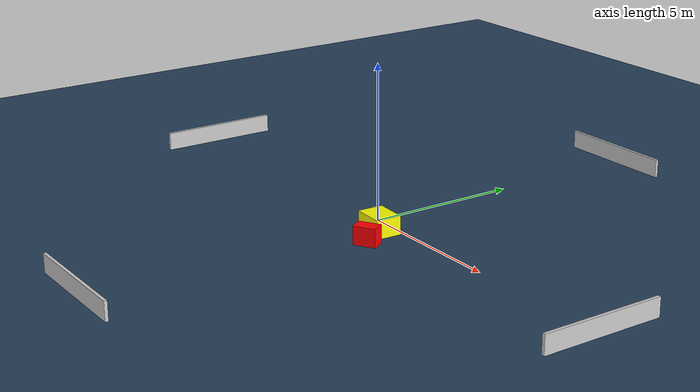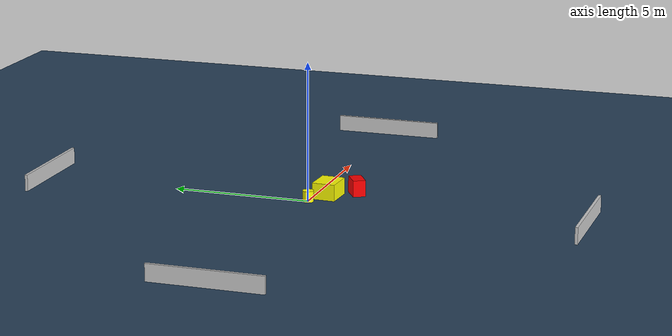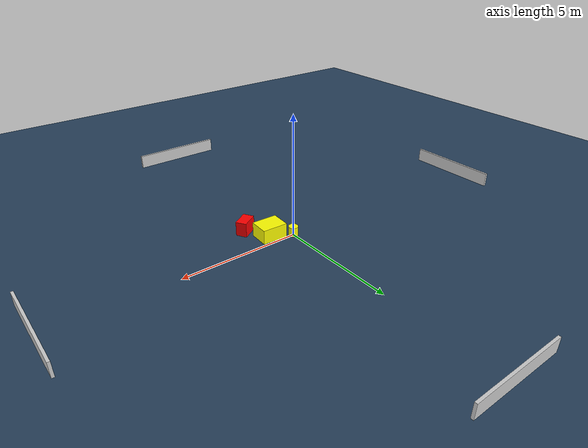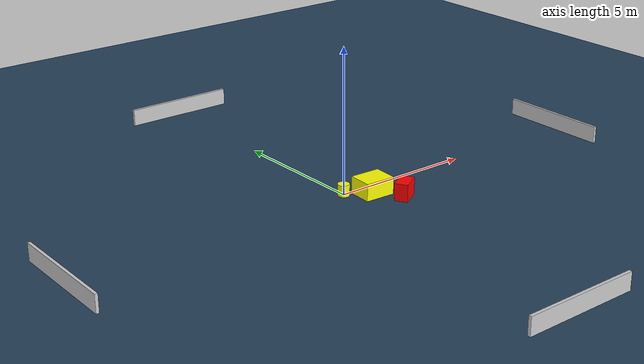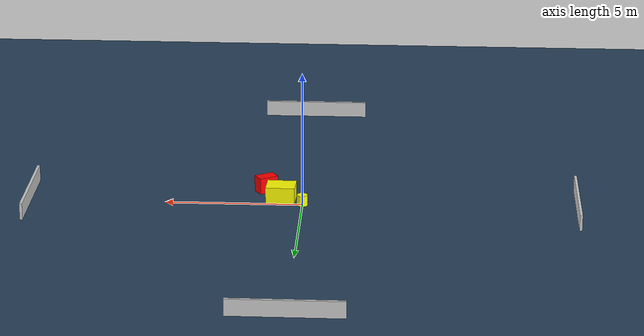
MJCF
<?xml version="1.0" ?>
<mujoco model="generated_environment">
  <option timestep="0.01" integrator="RK4" cone="elliptic"/>
  <default>
    <geom density="1"/>
  </default>
  <asset>
    <texture builtin="gradient" height="3072" name="skybox" rgb1="0.3 0.5 0.7" rgb2="0 0 0" type="skybox" width="512"/>
    <texture builtin="checker" height="300" name="groundplane" rgb1="0.2 0.3 0.4" rgb2="0.1 0.2 0.3" type="2d" width="300"/>
    <material name="groundplane" reflectance="0.2" texrepeat="5 5" texture="groundplane"/>
  </asset>
  <worldbody>
    <light dir="0 0 -1" directional="true" pos="0 0 1.5"/>
    <geom condim="3" friction="0.5 0.005 0.001" material="groundplane" name="floor" pos="0 0 0" size="0 0 0.05" type="plane"/>
    <body name="walls">
      <geom name="wall_1" condim="4" pos="-10.0 0.0 0.3" rgba="0.800000011920929 0.800000011920929 0.800000011920929 1.0" size="0.05 2.0 0.3" type="box"/>
      <geom name="wall_2" condim="4" pos="10.0 0.0 0.3" rgba="0.800000011920929 0.800000011920929 0.800000011920929 1.0" size="0.05 2.0 0.3" type="box"/>
      <geom name="wall_3" condim="4" pos="0.0 -10.0 0.3" rgba="0.800000011920929 0.800000011920929 0.800000011920929 1.0" size="2.0 0.05 0.3" type="box"/>
      <geom name="wall_4" condim="4" pos="0.0 10.0 0.3" rgba="0.800000011920929 0.800000011920929 0.800000011920929 1.0" size="2.0 0.05 0.3" type="box"/>
    </body>
    <body name="robot">
      <joint name="joint_x" type="slide" pos="0 0 0" axis="1 0 0"/>
      <joint name="joint_y" type="slide" pos="0 0 0" axis="0 1 0"/>
      <geom name="robot" type="cylinder" pos="0.0 0.0 0.2" size="0.2 0.2 0.0" mass="5.0" friction="1.0 0.005 0.0001" condim="4" rgba="1.0 1.0 0.0 1.0"/>
    </body>
    <body name="obstacle_1_movable">
      <geom name="obstacle_1_movable" condim="4" pos="0.8076113412475794 -0.494221049200567 0.3" euler="0 0 177.34343323831084" friction="0.0 0.005 0.001" rgba="1.0 1.0 0.0 1.0" size="0.5317056936219027 0.4169910448046161 0.3" type="box" mass="0.1"/>
      <joint type="free"/>
    </body>
    <body name="obstacle_2_static">
      <geom name="obstacle_2_static" condim="4" pos="1.4071033733557683 -1.3685551195447627 0.3" euler="0 0 121.27674017808812" friction="0.0 0.005 0.001" rgba="1.0 0.0 0.0 1.0" size="0.2267656833105894 0.3675802733019357 0.3" type="box"/>
    </body>
  </worldbody>
  <actuator>
    <motor name="actuator_x" joint="joint_x" gear="1" ctrlrange="-1 1"/>
    <motor name="actuator_y" joint="joint_y" gear="1" ctrlrange="-1 1"/>
  </actuator>
</mujoco>
